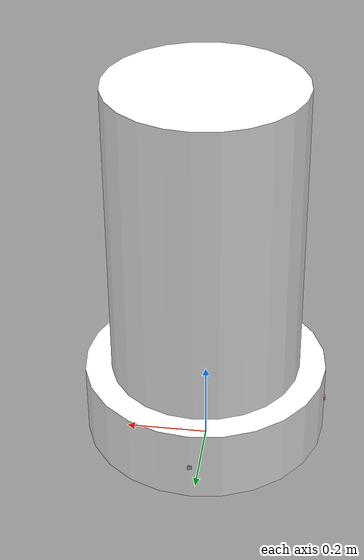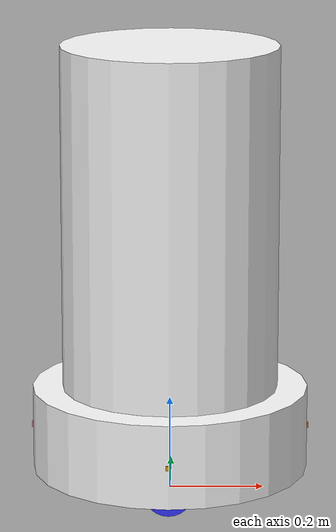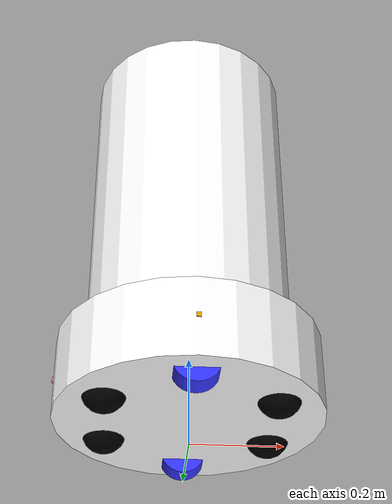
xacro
<?xml version="1.0"?>
<robot xmlns:xacro="http://www.ros.org/wiki/xacro" name="robot" >
    <xacro:include filename="gazebo_control.xacro" />
    <xacro:include filename="inertial_macros.xacro"/>
    <xacro:include filename="lidar.xacro"/>
    <xacro:include filename="camera.xacro"/>
    <xacro:arg name="use_ros2_control" default="false"/>
    <xacro:arg name="sim_mode" default="true"/>

    <material name="white">
        <color rgba="1 1 1 1" />
    </material>

    <material name="orange">
        <color rgba="1 0.3 0.1 1"/>
    </material>

    <material name="blue">
        <color rgba="0.2 0.2 1 1"/>
    </material>

    <material name="black">
        <color rgba="0 0 0 1"/>
    </material>

   <!-- BASE LINK -->
    <link name="base_link">

    </link>

    <!-- CHASSIS LINK -->

    <joint name="chassis_joint" type="fixed">
        <parent link="base_link"/>
        <child link="chassis"/>
        <origin xyz="-0.15 0 0.07"/>
    </joint>

    <link name="chassis">
        <visual>
            <origin xyz="0.15 0 0.0635"/>
            <geometry>
                <box size="0.381 0.381 0.15"/>
            </geometry>
            <material name="white"/>
        </visual>
        <collision>
            <origin xyz="0.15 0 0.0635"/>
            <geometry>
                <box size="0.381 0.381 0.15"/>
            </geometry>
        </collision>
        <xacro:inertial_box mass="1" x="0.381" y="0.381" z="0.15">
            <origin xyz="0.15 0 0.0635" rpy="0 0 0"/>
        </xacro:inertial_box>
    </link>
    <gazebo reference="chassis">
        <material>Gazebo/White</material>
    </gazebo>

    <!-- BODY BASE LINK -->

    <joint name="body_base_joint" type="fixed">
        <parent link="chassis"/>
        <child link="body_base"/>
        <origin xyz="-0.1 0 0.07"/>
    </joint>

    <link name="body_base">
        <visual>
            <origin xyz="0.25 0 0"/>
            <geometry>
                <cylinder radius="0.2921" length="0.1778"/>
            </geometry>
            <material name="white"/>
        </visual>
        <collision>
            <origin xyz="0.25 0 0"/>
            <geometry>
                <cylinder radius="0.2921" length="0.1778"/>
            </geometry>
        </collision>
        <xacro:inertial_cylinder mass="0.2" length="0.1778" radius="0.2921">
            <origin xyz="0 0 0" rpy="0 0 0"/>
        </xacro:inertial_cylinder>
    </link>
    <gazebo reference="chassis">
        <material>Gazebo/White</material>
    </gazebo>

    <!-- BODY LINK -->

    <joint name="body_joint" type="fixed">
        <parent link="chassis"/>
        <child link="body"/>
        <origin xyz="-0.1 0 0.1"/>
    </joint>

    <link name="body">
        <visual>
            <origin xyz="0.25 0 0.42"/>
            <geometry>
                <cylinder radius="0.2286" length="0.7366"/>
            </geometry>
            <material name="white"/>
        </visual>
        <collision>
            <origin xyz="0.25 0 0.42"/>
            <geometry>
                <cylinder radius="0.2286" length="0.7366"/>
            </geometry>
        </collision>
        <xacro:inertial_cylinder mass="0.35" length="0.7366" radius="0.2286">
            <origin xyz="0 0 0" rpy="0 0 0"/>
        </xacro:inertial_cylinder>
    </link>
    <gazebo reference="chassis">
        <material>Gazebo/White</material>
    </gazebo>

    <!-- LEFT WHEEL LINK -->

    <joint name="left_wheel_joint" type="continuous">
        <parent link="base_link"/>
        <child link="left_wheel"/>
        <origin xyz="0 0.22 0.07" rpy="-1.57075 0 0" />
        <axis xyz="0 0 1"/>
    </joint>

    <link name="left_wheel">
        <visual>
            <geometry>
                <cylinder radius="0.05" length="0.0508"/>
            </geometry>
            <material name="blue"/>
        </visual>
        <collision>
            <geometry>
                <cylinder radius="0.05" length="0.0508"/>
            </geometry>
        </collision>
        <xacro:inertial_cylinder mass="0.3" length="0.0508" radius="0.05">
            <origin xyz="0 0 0" rpy="0 0 0"/>
        </xacro:inertial_cylinder>
    </link>
    <gazebo reference="left_wheel">
        <material>Gazebo/White</material>
    </gazebo>

    <!-- RIGHT WHEEL LINK -->

    <joint name="right_wheel_joint" type="continuous">
        <parent link="base_link"/>
        <child link="right_wheel"/>
        <origin xyz="0 -0.22 0.07" rpy="-1.57075 0 0" />
        <axis xyz="0 0 1"/>
    </joint>

    <link name="right_wheel">
        <visual>
            <geometry>
                <cylinder radius="0.05" length="0.0508"/>
            </geometry>
            <material name="blue"/>
        </visual>
        <collision>
            <geometry>
                <cylinder radius="0.05" length="0.0508"/>
            </geometry>
        </collision>
        <xacro:inertial_cylinder mass="0.3" length="0.0508" radius="0.05">
            <origin xyz="0 0 0" rpy="0 0 0"/>
        </xacro:inertial_cylinder>
    </link>
    <gazebo reference="right_wheel">
        <material>Gazebo/White</material>
    </gazebo>

    <!-- FRONT RIGHT CASTER WHEEL LINK -->

    <joint name="front_right_caster_wheel_joint" type="continuous">
        <parent link="chassis"/>
        <child link="front_right_caster_wheel"/>
        <origin xyz="0.33 -0.1 0"/>
    </joint>

    <link name="front_right_caster_wheel">
        <visual>
            <geometry>
                <sphere radius="0.05"/>
            </geometry>
            <material name="black"/>
        </visual>
        <collision>
            <geometry>
                <sphere radius="0.05"/>
            </geometry>
        </collision>
        <xacro:inertial_sphere mass="0.1" radius="0.05">
            <origin xyz="0 0 0" rpy="0 0 0"/>
        </xacro:inertial_sphere>
    </link>
    <gazebo reference="caster_wheel">
        <material>Gazebo/Black</material>
        <mu1 value="0.001"/>
        <mu2 value="0.001"/>
    </gazebo>

    <!-- FRONT LEFT CASTER WHEEL LINK -->

    <joint name="front_left_caster_wheel_joint" type="continuous">
        <parent link="chassis"/>
        <child link="front_left_caster_wheel"/>
        <origin xyz="0.33 0.1 0"/>
    </joint>

    <link name="front_left_caster_wheel">
        <visual>
            <geometry>
                <sphere radius="0.05"/>
            </geometry>
            <material name="black"/>
        </visual>
        <collision>
            <geometry>
                <sphere radius="0.05"/>
            </geometry>
        </collision>
        <xacro:inertial_sphere mass="0.1" radius="0.05">
            <origin xyz="0 0 0" rpy="0 0 0"/>
        </xacro:inertial_sphere>
    </link>
    <gazebo reference="caster_wheel">
        <material>Gazebo/Black</material>
        <mu1 value="0.001"/>
        <mu2 value="0.001"/>
    </gazebo>

    <!-- REAR LEFT CASTER WHEEL LINK -->

    <joint name="rear_left_caster_wheel_joint" type="continuous">
        <parent link="chassis"/>
        <child link="rear_left_caster_wheel"/>
        <origin xyz="-0.03 0.1 0"/>
    </joint>

    <link name="rear_left_caster_wheel">
        <visual>
            <geometry>
                <sphere radius="0.05"/>
            </geometry>
            <material name="black"/>
        </visual>
        <collision>
            <geometry>
                <sphere radius="0.05"/>
            </geometry>
        </collision>
        <xacro:inertial_sphere mass="0.1" radius="0.05">
            <origin xyz="0 0 0" rpy="0 0 0"/>
        </xacro:inertial_sphere>
    </link>
    <gazebo reference="caster_wheel">
        <material>Gazebo/Black</material>
        <mu1 value="0.001"/>
        <mu2 value="0.001"/>
    </gazebo>

    <!-- REAR RIGHT CASTER WHEEL LINK -->

    <joint name="rear_right_caster_wheel_joint" type="continuous">
        <parent link="chassis"/>
        <child link="rear_right_caster_wheel"/>
        <origin xyz="-0.03 -0.1 0"/>
    </joint>

    <link name="rear_right_caster_wheel">
        <visual>
            <geometry>
                <sphere radius="0.05"/>
            </geometry>
            <material name="black"/>
        </visual>
        <collision>
            <geometry>
                <sphere radius="0.05"/>
            </geometry>
        </collision>
        <xacro:inertial_sphere mass="0.1" radius="0.05">
            <origin xyz="0 0 0" rpy="0 0 0"/>
        </xacro:inertial_sphere>
    </link>
    <gazebo reference="caster_wheel">
        <material>Gazebo/Black</material>
        <mu1 value="0.001"/>
        <mu2 value="0.001"/>
    </gazebo>

    <!-- FRONT SONAR -->
    <joint name="sonar_front_joint" type="fixed">
        <axis xyz="0 1 0" />
        <origin rpy="0 0 0" xyz="0.54 0 0" />
        <parent link="body_base"/>
        <child link="base_sonar_front"/>
    </joint>
    <link name="base_sonar_front">
        <collision>
        <origin xyz="0 0 0" rpy="0 0 0"/>
        <geometry>
            <box size="0.01 0.01 0.01"/>
        </geometry>
        </collision>
        <visual>
        <origin xyz="0 0 0" rpy="0 0 0"/>
        <geometry>
            <box size="0.01 0.01 0.01"/>
        </geometry>
        </visual>
        <inertial>
        <mass value="1e-5" />
        <origin xyz="0 0 0" rpy="0 0 0"/>
        <inertia ixx="1e-6" ixy="0" ixz="0" iyy="1e-6" iyz="0" izz="1e-6" />
        </inertial>
    </link>
    <gazebo reference="base_sonar_front">
        <sensor type="ray" name="TeraRanger">
            <pose>0 0 0 0 0 0</pose>
            <visualize>true</visualize>
            <update_rate>50</update_rate>
            <ray>
                <scan>
                    <horizontal>
                    <samples>10</samples>
                    <resolution>1</resolution>
                    <min_angle>-0.14835</min_angle>
                    <max_angle>0.14835</max_angle>
                    </horizontal>
                    <vertical>
                    <samples>10</samples>
                    <resolution>1</resolution>
                    <min_angle>-0.14835</min_angle>
                    <max_angle>0.14835</max_angle>
                    </vertical>
                </scan>
                <range>
                    <min>0.01</min>
                    <max>2</max>
                    <resolution>0.02</resolution>
                </range>
            </ray>
            <plugin filename="libgazebo_ros_range.so" name="gazebo_ros_range">
                <gaussianNoise>0.005</gaussianNoise>
                <alwaysOn>true</alwaysOn>
                <updateRate>50</updateRate>
                <topicName>sensor/sonar_front</topicName>
                <frameName>base_sonar_front</frameName>
                <radiation>INFRARED</radiation>
                <fov>0.2967</fov>
            </plugin>
        </sensor>
    </gazebo>

<!-- REAR SONAR -->
    <joint name="sonar_rear_joint" type="fixed">
        <axis xyz="0 1 0" />
        <origin rpy="0 0 3.1415" xyz="-0.04 0 0" />
        <parent link="body_base"/>
        <child link="base_sonar_rear"/>
    </joint>
    <link name="base_sonar_rear">
        <collision>
        <origin xyz="0 0 0" rpy="0 0 0"/>
        <geometry>
            <box size="0.01 0.01 0.01"/>
        </geometry>
        </collision>
        <visual>
        <origin xyz="0 0 0" rpy="0 0 0"/>
        <geometry>
            <box size="0.01 0.01 0.01"/>
        </geometry>
        </visual>
        <inertial>
        <mass value="1e-5" />
        <origin xyz="0 0 0" rpy="0 0 0"/>
        <inertia ixx="1e-6" ixy="0" ixz="0" iyy="1e-6" iyz="0" izz="1e-6" />
        </inertial>
    </link>
    <gazebo reference="base_sonar_rear">
        <sensor type="ray" name="TeraRanger">
            <pose>0 0 0 0 0 0</pose>
            <visualize>true</visualize>
            <update_rate>50</update_rate>
            <ray>
                <scan>
                    <horizontal>
                    <samples>10</samples>
                    <resolution>1</resolution>
                    <min_angle>-0.14835</min_angle>
                    <max_angle>0.14835</max_angle>
                    </horizontal>
                    <vertical>
                    <samples>10</samples>
                    <resolution>1</resolution>
                    <min_angle>-0.14835</min_angle>
                    <max_angle>0.14835</max_angle>
                    </vertical>
                </scan>
                <range>
                    <min>0.01</min>
                    <max>2</max>
                    <resolution>0.02</resolution>
                </range>
            </ray>
            <plugin filename="libgazebo_ros_range.so" name="gazebo_ros_range">
                <gaussianNoise>0.005</gaussianNoise>
                <alwaysOn>true</alwaysOn>
                <updateRate>50</updateRate>
                <topicName>sensor/sonar_rear</topicName>
                <frameName>base_sonar_rear</frameName>
                <radiation>INFRARED</radiation>
                <fov>0.2967</fov>
            </plugin>
        </sensor>
    </gazebo>

<!-- LEFT SONAR -->
    <joint name="sonar_left_joint" type="fixed">
        <axis xyz="0 1 0" />
        <origin rpy="0 0 1.57" xyz="0.25 0.29 0" />
        <parent link="body_base"/>
        <child link="base_sonar_left"/>
    </joint>
    <link name="base_sonar_left">
        <collision>
        <origin xyz="0 0 0" rpy="0 0 0"/>
        <geometry>
            <box size="0.01 0.01 0.01"/>
        </geometry>
        </collision>
        <visual>
        <origin xyz="0 0 0" rpy="0 0 0"/>
        <geometry>
            <box size="0.01 0.01 0.01"/>
        </geometry>
        </visual>
        <inertial>
        <mass value="1e-5" />
        <origin xyz="0 0 0" rpy="0 0 0"/>
        <inertia ixx="1e-6" ixy="0" ixz="0" iyy="1e-6" iyz="0" izz="1e-6" />
        </inertial>
    </link>
    <gazebo reference="base_sonar_left">
        <sensor type="ray" name="TeraRanger">
            <pose>0 0 0 0 0 0</pose>
            <visualize>true</visualize>
            <update_rate>50</update_rate>
            <ray>
                <scan>
                    <horizontal>
                    <samples>10</samples>
                    <resolution>1</resolution>
                    <min_angle>-0.14835</min_angle>
                    <max_angle>0.14835</max_angle>
                    </horizontal>
                    <vertical>
                    <samples>10</samples>
                    <resolution>1</resolution>
                    <min_angle>-0.14835</min_angle>
                    <max_angle>0.14835</max_angle>
                    </vertical>
                </scan>
                <range>
                    <min>0.01</min>
                    <max>2</max>
                    <resolution>0.02</resolution>
                </range>
            </ray>
            <plugin filename="libgazebo_ros_range.so" name="gazebo_ros_range">
                <gaussianNoise>0.005</gaussianNoise>
                <alwaysOn>true</alwaysOn>
                <updateRate>50</updateRate>
                <topicName>sensor/sonar_left</topicName>
                <frameName>base_sonar_left</frameName>
                <radiation>INFRARED</radiation>
                <fov>0.2967</fov>
            </plugin>
        </sensor>
    </gazebo>

<!-- RIGHT SONAR -->
    <joint name="sonar_right_joint" type="fixed">
        <axis xyz="0 1 0" />
        <origin rpy="0 0 -1.57" xyz="0.25 -0.29 0" />
        <parent link="body_base"/>
        <child link="base_sonar_right"/>
    </joint>
    <link name="base_sonar_right">
        <collision>
        <origin xyz="0 0 0" rpy="0 0 0"/>
        <geometry>
            <box size="0.01 0.01 0.01"/>
        </geometry>
        </collision>
        <visual>
        <origin xyz="0 0 0" rpy="0 0 0"/>
        <geometry>
            <box size="0.01 0.01 0.01"/>
        </geometry>
        </visual>
        <inertial>
        <mass value="1e-5" />
        <origin xyz="0 0 0" rpy="0 0 0"/>
        <inertia ixx="1e-6" ixy="0" ixz="0" iyy="1e-6" iyz="0" izz="1e-6" />
        </inertial>
    </link>
    <gazebo reference="base_sonar_right">
        <sensor type="ray" name="TeraRanger">
            <pose>0 0 0 0 0 0</pose>
            <visualize>true</visualize>
            <update_rate>50</update_rate>
            <ray>
                <scan>
                    <horizontal>
                    <samples>10</samples>
                    <resolution>1</resolution>
                    <min_angle>-0.14835</min_angle>
                    <max_angle>0.14835</max_angle>
                    </horizontal>
                    <vertical>
                    <samples>10</samples>
                    <resolution>1</resolution>
                    <min_angle>-0.14835</min_angle>
                    <max_angle>0.14835</max_angle>
                    </vertical>
                </scan>
                <range>
                    <min>0.01</min>
                    <max>2</max>
                    <resolution>0.02</resolution>
                </range>
            </ray>
            <plugin filename="libgazebo_ros_range.so" name="gazebo_ros_range">
                <gaussianNoise>0.005</gaussianNoise>
                <alwaysOn>true</alwaysOn>
                <updateRate>50</updateRate>
                <topicName>sensor/sonar_right</topicName>
                <frameName>base_sonar_right</frameName>
                <radiation>INFRARED</radiation>
                <fov>0.2967</fov>
            </plugin>
        </sensor>
    </gazebo>
</robot>

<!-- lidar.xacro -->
<robot xmlns:xacro="http://www.ros.org/wiki/xacro" >

    <joint name="laser_joint" type="fixed">
        <parent link="chassis"/>
        <child link="laser_frame"/>
        <origin xyz="0 0 0.76" rpy="0 0 0"/>
    </joint>

    <link name="laser_frame">
        <visual>
            <geometry>
                <cylinder radius="0.05" length="0.04"/>
            </geometry>
            <material name="black"/>
        </visual>
        <collision>
            <geometry>
                <cylinder radius="0.05" length="0.04"/>
            </geometry>
        </collision>
        <xacro:inertial_cylinder mass="0.1" length="0.04" radius="0.05">
            <origin xyz="0 0 0" rpy="0 0 0"/>
        </xacro:inertial_cylinder>
    </link>

    <gazebo reference="laser_frame">
        <material>Gazebo/Black</material>

        <sensor name="laser" type="ray">
            <pose> 0 0 0 0 0 0 </pose>
            <visualize>true</visualize>
            <update_rate>10</update_rate>
            <ray>
                <scan>
                    <horizontal>
                        <samples>360</samples>
                        <min_angle>-3.14</min_angle>
                        <max_angle>3.14</max_angle>
                    </horizontal>
                </scan>
                <range>
                    <min>0.3</min>
                    <max>12</max>
                </range>
            </ray>
            <plugin name="laser_controller" filename="libgazebo_ros_ray_sensor.so">
                <ros>
                    <argument>~/out:=scan</argument>
                </ros>
                <output_type>sensor_msgs/LaserScan</output_type>
                <frame_name>laser_frame</frame_name>
            </plugin>
        </sensor>
    </gazebo>

</robot>

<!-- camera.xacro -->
<robot xmlns:xacro="http://www.ros.org/wiki/xacro" >

    <joint name="camera_joint" type="fixed">
        <parent link="chassis"/>
        <child link="camera_link"/>
        <origin xyz="0.15 0 0.7112" rpy="0 0 0"/>
    </joint>

    <link name="camera_link">
        <visual>
            <geometry>
                <box size="0.010 0.03 0.03"/>
            </geometry>
            <material name="black"/>
        </visual>
    </link>

    <joint name="camera_optical_joint" type="fixed">
        <parent link="camera_link"/>
        <child link="camera_link_optical"/>
        <origin xyz="0 0 0" rpy="${-pi/2} 0 ${-pi/2}"/>
    </joint>

    <link name="camera_link_optical"></link>

    <gazebo reference="camera_link">
        <material>Gazebo/Black</material>

        <sensor name="camera" type="camera">
            <pose> 0 0 0 0 0 0 </pose>
            <visualize>true</visualize>
            <update_rate>10</update_rate>
            <camera>
                <horizontal_fov>1.089</horizontal_fov>
                <image>
                    <format>R8G8B8</format>
                    <width>640</width>
                    <height>480</height>
                </image>
                <clip>
                    <near>0.05</near>
                    <far>8.0</far>
                </clip>
            </camera>
            <plugin name="camera_controller" filename="libgazebo_ros_camera.so">
                <frame_name>camera_link_optical</frame_name>
            </plugin>
        </sensor>
    </gazebo>

</robot>
